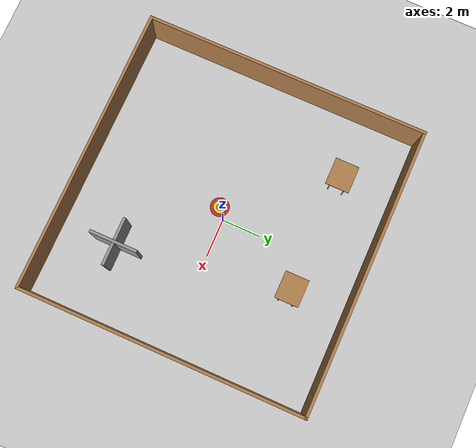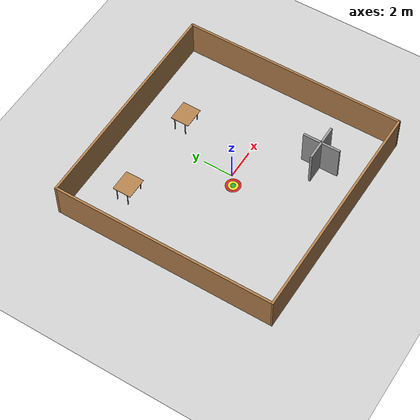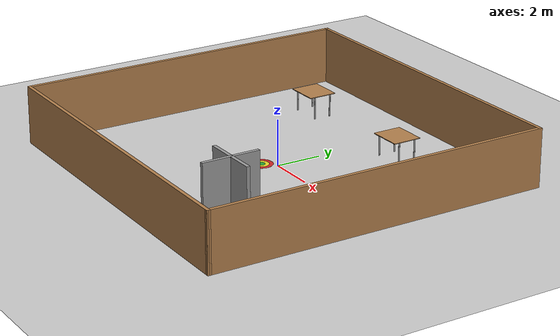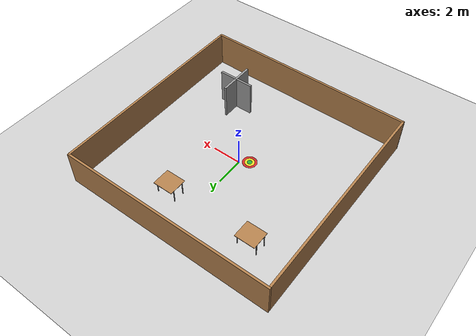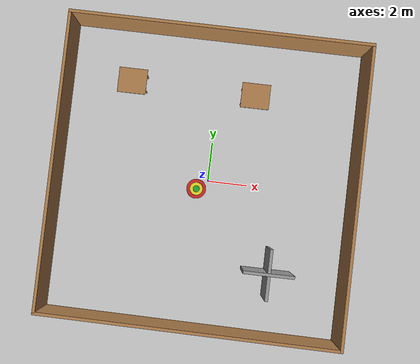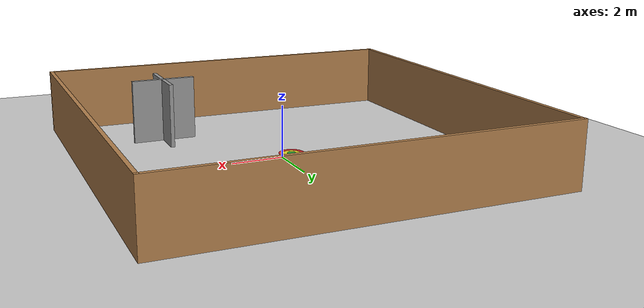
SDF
<sdf version="1.7">
 <world name="default">
  <light name="sun" type="directional">
   <pose>0 0 10 0 -0 0</pose>
   <diffuse>0.8 0.8 0.8 1</diffuse>
   <specular>0.2 0.2 0.2 1</specular>
   <attenuation>
    <range>1000</range>
    <constant>0.9</constant>
    <linear>0.01</linear>
    <quadratic>0.001</quadratic>
   </attenuation>
   <direction>-0.5 0.1 -0.9</direction>
   <spot><inner_angle>0</inner_angle><outer_angle>0</outer_angle><falloff>0</falloff></spot>
  </light>
  <model name="ground_plane">
   <static>1</static>
   <link name="link">
    <collision name="collision">
     <geometry><plane><normal>0 0 1</normal><size>100 100</size></plane></geometry>
     <surface><friction><ode><mu>100</mu><mu2>50</mu2></ode></friction></surface>
    </collision>
    <visual name="visual">
     <cast_shadows>0</cast_shadows>
     <geometry><plane><normal>0 0 1</normal><size>100 100</size></plane></geometry>
     <material>
      <script><uri>file://media/materials/scripts/gazebo.material</uri><name>Gazebo/Grey</name></script>
     </material>
    </visual>
   </link>
  </model>
  <gravity>0 0 -9.8</gravity>
  <magnetic_field>6e-06 2.3e-05 -4.2e-05</magnetic_field>
  <atmosphere type="adiabatic"/>
  <physics name="default_physics" default="0" type="ode">
   <max_step_size>0.001</max_step_size>
   <real_time_factor>1</real_time_factor>
   <real_time_update_rate>1000</real_time_update_rate>
  </physics>
  <scene><ambient>0.4 0.4 0.4 1</ambient><background>0.7 0.7 0.7 1</background><shadows>1</shadows></scene>
  <audio><device>default</device></audio>
  <spherical_coordinates>
   <surface_model>EARTH_WGS84</surface_model>
   <latitude_deg>0</latitude_deg>
   <longitude_deg>0</longitude_deg>
   <elevation>0</elevation>
   <heading_deg>0</heading_deg>
  </spherical_coordinates>
  <model name="mid">
   <pose>-0.167012 -0.01353 0 0 -0 0</pose>
   <link name="Wall_25">
    <collision name="Wall_25_Collision">
     <geometry><box><size>15 0.15 2.5</size></box></geometry>
     <pose>0 0 1.25 0 -0 0</pose>
    </collision>
    <visual name="Wall_25_Visual">
     <pose>0 0 1.25 0 -0 0</pose>
     <geometry><box><size>15 0.15 2.5</size></box></geometry>
     <material>
      <script><uri>file://media/materials/scripts/gazebo.material</uri><name>Gazebo/Wood</name></script>
      <ambient>1 1 1 1</ambient>
     </material>
     <meta><layer>0</layer></meta>
    </visual>
    <pose>-0 7.42538 0 0 -0 0</pose>
   </link>
   <link name="Wall_26">
    <collision name="Wall_26_Collision">
     <geometry><box><size>15 0.15 2.5</size></box></geometry>
     <pose>0 0 1.25 0 -0 0</pose>
    </collision>
    <visual name="Wall_26_Visual">
     <pose>0 0 1.25 0 -0 0</pose>
     <geometry><box><size>15 0.15 2.5</size></box></geometry>
     <material>
      <script><uri>file://media/materials/scripts/gazebo.material</uri><name>Gazebo/Wood</name></script>
      <ambient>1 1 1 1</ambient>
     </material>
     <meta><layer>0</layer></meta>
    </visual>
    <pose>7.425 0.000376 0 0 -0 -1.5708</pose>
   </link>
   <link name="Wall_27">
    <collision name="Wall_27_Collision">
     <geometry><box><size>15.0008 0.15 2.5</size></box></geometry>
     <pose>0 0 1.25 0 -0 0</pose>
    </collision>
    <visual name="Wall_27_Visual">
     <pose>0 0 1.25 0 -0 0</pose>
     <geometry><box><size>15.0008 0.15 2.5</size></box></geometry>
     <material>
      <script><uri>file://media/materials/scripts/gazebo.material</uri><name>Gazebo/Wood</name></script>
      <ambient>1 1 1 1</ambient>
     </material>
     <meta><layer>0</layer></meta>
    </visual>
    <pose>-0 -7.34962 0 0 -0 3.13149</pose>
   </link>
   <link name="Wall_29">
    <collision name="Wall_29_Collision">
     <geometry><box><size>14.75 0.15 2.5</size></box></geometry>
     <pose>0 0 1.25 0 -0 0</pose>
    </collision>
    <visual name="Wall_29_Visual">
     <pose>0 0 1.25 0 -0 0</pose>
     <geometry><box><size>14.75 0.15 2.5</size></box></geometry>
     <material>
      <script><uri>file://media/materials/scripts/gazebo.material</uri><name>Gazebo/Wood</name></script>
      <ambient>1 1 1 1</ambient>
     </material>
     <meta><layer>0</layer></meta>
    </visual>
    <pose>-7.425 0.125376 0 0 -0 -1.5708</pose>
   </link>
   <static>1</static>
  </model>
  <model name="Target_0">
   <link name="green">
    <visual name="visual">
     <geometry><cylinder><radius>0.167589</radius><length>0.0025</length></cylinder></geometry>
     <material>
      <script><uri>file://media/materials/scripts/gazebo.material</uri><name>Gazebo/Green</name></script>
      <ambient>1 1 1 1</ambient>
     </material>
     <cast_shadows>0</cast_shadows>
    </visual>
   </link>
   <link name="red">
    <visual name="visual">
     <geometry><cylinder><radius>0.502766</radius><length>0.0015</length></cylinder></geometry>
     <material>
      <script><uri>file://media/materials/scripts/gazebo.material</uri><name>Gazebo/Red</name></script>
      <ambient>1 1 1 1</ambient>
     </material>
     <cast_shadows>0</cast_shadows>
    </visual>
   </link>
   <link name="yellow">
    <visual name="visual">
     <geometry><cylinder><radius>0.335178</radius><length>0.002</length></cylinder></geometry>
     <material>
      <script><uri>file://media/materials/scripts/gazebo.material</uri><name>Gazebo/Yellow</name></script>
      <ambient>1 1 1 1</ambient>
     </material>
     <cast_shadows>0</cast_shadows>
    </visual>
   </link>
   <static>1</static>
   <pose>-0.567616 -0.434584 0 0 -0 0</pose>
  </model>
  <model name="ten_number">
   <pose>3.40046 -4.22265 0 0 -0 0</pose>
   <link name="Wall_26">
    <collision name="Wall_26_Collision">
     <geometry><box><size>2.5 0.15 2.5</size></box></geometry>
     <pose>0 0 1.25 0 -0 0</pose>
    </collision>
    <visual name="Wall_26_Visual">
     <pose>0 0 1.25 0 -0 0</pose>
     <geometry><box><size>2.5 0.15 2.5</size></box></geometry>
     <material>
      <script><uri>file://media/materials/scripts/gazebo.material</uri><name>Gazebo/Grey</name></script>
      <ambient>1 1 1 1</ambient>
     </material>
     <meta><layer>0</layer></meta>
    </visual>
    <pose>0 0.025001 0 0 -0 0</pose>
   </link>
   <link name="Wall_28">
    <collision name="Wall_28_Collision">
     <geometry><box><size>2.5 0.15 2.5</size></box></geometry>
     <pose>0 0 1.25 0 -0 0</pose>
    </collision>
    <visual name="Wall_28_Visual">
     <pose>0 0 1.25 0 -0 0</pose>
     <geometry><box><size>2.5 0.15 2.5</size></box></geometry>
     <material>
      <script><uri>file://media/materials/scripts/gazebo.material</uri><name>Gazebo/Grey</name></script>
      <ambient>1 1 1 1</ambient>
     </material>
     <meta><layer>0</layer></meta>
    </visual>
    <pose>0.005 0 0 0 -0 -1.5708</pose>
   </link>
   <static>1</static>
  </model>
  <model name="table">
   <link name="link">
    <inertial>
     <inertia><ixx>0</ixx><ixy>0</ixy><ixz>0</ixz><iyy>0</iyy><iyz>0</iyz><izz>0</izz></inertia>
     <mass>0</mass>
    </inertial>
    <visual name="front_left_leg">
     <pose>0.68 0.38 0.5 0 -0 0</pose>
     <geometry><cylinder><radius>0.031124</radius><length>1</length></cylinder></geometry>
     <material>
      <script><uri>file://media/materials/scripts/gazebo.material</uri><name>Gazebo/Grey</name></script>
     </material>
    </visual>
    <visual name="visual1">
     <pose>0 0 1 0 -0 0</pose>
     <geometry><box><size>1.43473 1.2599 0.03</size></box></geometry>
     <material>
      <script><uri>file://media/materials/scripts/gazebo.material</uri><name>Gazebo/Wood</name></script>
     </material>
    </visual>
    <visual name="front_right_leg">
     <pose>0.68 -0.38 0.5 0 -0 0</pose>
     <geometry><cylinder><radius>0.031124</radius><length>1</length></cylinder></geometry>
     <material>
      <script><uri>file://media/materials/scripts/gazebo.material</uri><name>Gazebo/Grey</name></script>
     </material>
    </visual>
    <visual name="back_right_leg">
     <pose>-0.68 -0.38 0.5 0 -0 0</pose>
     <geometry><cylinder><radius>0.031124</radius><length>1</length></cylinder></geometry>
     <material>
      <script><uri>file://media/materials/scripts/gazebo.material</uri><name>Gazebo/Grey</name></script>
     </material>
    </visual>
    <visual name="back_left_leg">
     <pose>-0.68 0.38 0.5 0 -0 0</pose>
     <geometry><cylinder><radius>0.031124</radius><length>1</length></cylinder></geometry>
     <material>
      <script><uri>file://media/materials/scripts/gazebo.material</uri><name>Gazebo/Grey</name></script>
     </material>
    </visual>
    <collision name="surface">
     <pose>0 0 1 0 -0 0</pose>
     <geometry><box><size>1.43473 1.2599 0.03</size></box></geometry>
     <surface>
      <friction>
       <ode><mu>0.6</mu><mu2>0.6</mu2><fdir1>0 0 0</fdir1><slip1>0</slip1><slip2>0</slip2></ode>
       <torsional>
        <coefficient>1</coefficient>
        <patch_radius>0</patch_radius>
        <surface_radius>0</surface_radius>
        <use_patch_radius>1</use_patch_radius>
        <ode><slip>0</slip></ode>
       </torsional>
      </friction>
      <bounce><restitution_coefficient>0</restitution_coefficient><threshold>1e+06</threshold></bounce>
      <contact>
       <collide_without_contact>0</collide_without_contact>
       <collide_without_contact_bitmask>1</collide_without_contact_bitmask>
       <collide_bitmask>1</collide_bitmask>
       <ode>
        <soft_cfm>0</soft_cfm>
        <soft_erp>0.2</soft_erp>
        <kp>1e+13</kp>
        <kd>1</kd>
        <max_vel>0.01</max_vel>
        <min_depth>0</min_depth>
       </ode>
       <bullet>
        <split_impulse>1</split_impulse>
        <split_impulse_penetration_threshold>-0.01</split_impulse_penetration_threshold>
        <soft_cfm>0</soft_cfm>
        <soft_erp>0.2</soft_erp>
        <kp>1e+13</kp>
        <kd>1</kd>
       </bullet>
      </contact>
     </surface>
    </collision>
    <collision name="front_left_leg">
     <pose>0.68 0.38 0.5 0 -0 0</pose>
     <geometry><cylinder><radius>0.031124</radius><length>1</length></cylinder></geometry>
     <surface>
      <friction>
       <ode><mu>1</mu><mu2>1</mu2><fdir1>0 0 0</fdir1><slip1>0</slip1><slip2>0</slip2></ode>
       <torsional>
        <coefficient>1</coefficient>
        <patch_radius>0</patch_radius>
        <surface_radius>0</surface_radius>
        <use_patch_radius>1</use_patch_radius>
        <ode><slip>0</slip></ode>
       </torsional>
      </friction>
      <bounce><restitution_coefficient>0</restitution_coefficient><threshold>1e+06</threshold></bounce>
      <contact>
       <collide_without_contact>0</collide_without_contact>
       <collide_without_contact_bitmask>1</collide_without_contact_bitmask>
       <collide_bitmask>1</collide_bitmask>
       <ode>
        <soft_cfm>0</soft_cfm>
        <soft_erp>0.2</soft_erp>
        <kp>1e+13</kp>
        <kd>1</kd>
        <max_vel>0.01</max_vel>
        <min_depth>0</min_depth>
       </ode>
       <bullet>
        <split_impulse>1</split_impulse>
        <split_impulse_penetration_threshold>-0.01</split_impulse_penetration_threshold>
        <soft_cfm>0</soft_cfm>
        <soft_erp>0.2</soft_erp>
        <kp>1e+13</kp>
        <kd>1</kd>
       </bullet>
      </contact>
     </surface>
    </collision>
    <collision name="front_right_leg">
     <pose>0.68 -0.38 0.5 0 -0 0</pose>
     <geometry><cylinder><radius>0.031124</radius><length>1</length></cylinder></geometry>
     <surface>
      <friction>
       <ode><mu>1</mu><mu2>1</mu2><fdir1>0 0 0</fdir1><slip1>0</slip1><slip2>0</slip2></ode>
       <torsional>
        <coefficient>1</coefficient>
        <patch_radius>0</patch_radius>
        <surface_radius>0</surface_radius>
        <use_patch_radius>1</use_patch_radius>
        <ode><slip>0</slip></ode>
       </torsional>
      </friction>
      <bounce><restitution_coefficient>0</restitution_coefficient><threshold>1e+06</threshold></bounce>
      <contact>
       <collide_without_contact>0</collide_without_contact>
       <collide_without_contact_bitmask>1</collide_without_contact_bitmask>
       <collide_bitmask>1</collide_bitmask>
       <ode>
        <soft_cfm>0</soft_cfm>
        <soft_erp>0.2</soft_erp>
        <kp>1e+13</kp>
        <kd>1</kd>
        <max_vel>0.01</max_vel>
        <min_depth>0</min_depth>
       </ode>
       <bullet>
        <split_impulse>1</split_impulse>
        <split_impulse_penetration_threshold>-0.01</split_impulse_penetration_threshold>
        <soft_cfm>0</soft_cfm>
        <soft_erp>0.2</soft_erp>
        <kp>1e+13</kp>
        <kd>1</kd>
       </bullet>
      </contact>
     </surface>
    </collision>
    <collision name="back_right_leg">
     <pose>-0.68 -0.38 0.5 0 -0 0</pose>
     <geometry><cylinder><radius>0.031124</radius><length>1</length></cylinder></geometry>
     <surface>
      <friction>
       <ode><mu>1</mu><mu2>1</mu2><fdir1>0 0 0</fdir1><slip1>0</slip1><slip2>0</slip2></ode>
       <torsional>
        <coefficient>1</coefficient>
        <patch_radius>0</patch_radius>
        <surface_radius>0</surface_radius>
        <use_patch_radius>1</use_patch_radius>
        <ode><slip>0</slip></ode>
       </torsional>
      </friction>
      <bounce><restitution_coefficient>0</restitution_coefficient><threshold>1e+06</threshold></bounce>
      <contact>
       <collide_without_contact>0</collide_without_contact>
       <collide_without_contact_bitmask>1</collide_without_contact_bitmask>
       <collide_bitmask>1</collide_bitmask>
       <ode>
        <soft_cfm>0</soft_cfm>
        <soft_erp>0.2</soft_erp>
        <kp>1e+13</kp>
        <kd>1</kd>
        <max_vel>0.01</max_vel>
        <min_depth>0</min_depth>
       </ode>
       <bullet>
        <split_impulse>1</split_impulse>
        <split_impulse_penetration_threshold>-0.01</split_impulse_penetration_threshold>
        <soft_cfm>0</soft_cfm>
        <soft_erp>0.2</soft_erp>
        <kp>1e+13</kp>
        <kd>1</kd>
       </bullet>
      </contact>
     </surface>
    </collision>
    <collision name="back_left_leg">
     <pose>-0.68 0.38 0.5 0 -0 0</pose>
     <geometry><cylinder><radius>0.031124</radius><length>1</length></cylinder></geometry>
     <surface>
      <friction>
       <ode><mu>1</mu><mu2>1</mu2><fdir1>0 0 0</fdir1><slip1>0</slip1><slip2>0</slip2></ode>
       <torsional>
        <coefficient>1</coefficient>
        <patch_radius>0</patch_radius>
        <surface_radius>0</surface_radius>
        <use_patch_radius>1</use_patch_radius>
        <ode><slip>0</slip></ode>
       </torsional>
      </friction>
      <bounce><restitution_coefficient>0</restitution_coefficient><threshold>1e+06</threshold></bounce>
      <contact>
       <collide_without_contact>0</collide_without_contact>
       <collide_without_contact_bitmask>1</collide_without_contact_bitmask>
       <collide_bitmask>1</collide_bitmask>
       <ode>
        <soft_cfm>0</soft_cfm>
        <soft_erp>0.2</soft_erp>
        <kp>1e+13</kp>
        <kd>1</kd>
        <max_vel>0.01</max_vel>
        <min_depth>0</min_depth>
       </ode>
       <bullet>
        <split_impulse>1</split_impulse>
        <split_impulse_penetration_threshold>-0.01</split_impulse_penetration_threshold>
        <soft_cfm>0</soft_cfm>
        <soft_erp>0.2</soft_erp>
        <kp>1e+13</kp>
        <kd>1</kd>
       </bullet>
      </contact>
     </surface>
    </collision>
   </link>
   <static>1</static>
   <pose>1.89135 4.52996 0 0 -0 0</pose>
  </model>
  <model name="table_0">
   <link name="link">
    <inertial>
     <inertia><ixx>0</ixx><ixy>0</ixy><ixz>0</ixz><iyy>0</iyy><iyz>0</iyz><izz>0</izz></inertia>
     <mass>0</mass>
    </inertial>
    <visual name="front_left_leg">
     <pose>0.68 0.38 0.5 0 -0 0</pose>
     <geometry><cylinder><radius>0.031124</radius><length>1</length></cylinder></geometry>
     <material>
      <script><uri>file://media/materials/scripts/gazebo.material</uri><name>Gazebo/Grey</name></script>
     </material>
    </visual>
    <visual name="visual1">
     <pose>0 0 1 0 -0 0</pose>
     <geometry><box><size>1.43473 1.2599 0.03</size></box></geometry>
     <material>
      <script><uri>file://media/materials/scripts/gazebo.material</uri><name>Gazebo/Wood</name></script>
     </material>
    </visual>
    <visual name="front_right_leg">
     <pose>0.68 -0.38 0.5 0 -0 0</pose>
     <geometry><cylinder><radius>0.031124</radius><length>1</length></cylinder></geometry>
     <material>
      <script><uri>file://media/materials/scripts/gazebo.material</uri><name>Gazebo/Grey</name></script>
     </material>
    </visual>
    <visual name="back_right_leg">
     <pose>-0.68 -0.38 0.5 0 -0 0</pose>
     <geometry><cylinder><radius>0.031124</radius><length>1</length></cylinder></geometry>
     <material>
      <script><uri>file://media/materials/scripts/gazebo.material</uri><name>Gazebo/Grey</name></script>
     </material>
    </visual>
    <visual name="back_left_leg">
     <pose>-0.68 0.38 0.5 0 -0 0</pose>
     <geometry><cylinder><radius>0.031124</radius><length>1</length></cylinder></geometry>
     <material>
      <script><uri>file://media/materials/scripts/gazebo.material</uri><name>Gazebo/Grey</name></script>
     </material>
    </visual>
    <collision name="surface">
     <pose>0 0 1 0 -0 0</pose>
     <geometry><box><size>1.43473 1.2599 0.03</size></box></geometry>
     <surface>
      <friction>
       <ode><mu>0.6</mu><mu2>0.6</mu2><fdir1>0 0 0</fdir1><slip1>0</slip1><slip2>0</slip2></ode>
       <torsional>
        <coefficient>1</coefficient>
        <patch_radius>0</patch_radius>
        <surface_radius>0</surface_radius>
        <use_patch_radius>1</use_patch_radius>
        <ode><slip>0</slip></ode>
       </torsional>
      </friction>
      <bounce><restitution_coefficient>0</restitution_coefficient><threshold>1e+06</threshold></bounce>
      <contact>
       <collide_without_contact>0</collide_without_contact>
       <collide_without_contact_bitmask>1</collide_without_contact_bitmask>
       <collide_bitmask>1</collide_bitmask>
       <ode>
        <soft_cfm>0</soft_cfm>
        <soft_erp>0.2</soft_erp>
        <kp>1e+13</kp>
        <kd>1</kd>
        <max_vel>0.01</max_vel>
        <min_depth>0</min_depth>
       </ode>
       <bullet>
        <split_impulse>1</split_impulse>
        <split_impulse_penetration_threshold>-0.01</split_impulse_penetration_threshold>
        <soft_cfm>0</soft_cfm>
        <soft_erp>0.2</soft_erp>
        <kp>1e+13</kp>
        <kd>1</kd>
       </bullet>
      </contact>
     </surface>
    </collision>
    <collision name="front_left_leg">
     <pose>0.68 0.38 0.5 0 -0 0</pose>
     <geometry><cylinder><radius>0.031124</radius><length>1</length></cylinder></geometry>
     <surface>
      <friction>
       <ode><mu>1</mu><mu2>1</mu2><fdir1>0 0 0</fdir1><slip1>0</slip1><slip2>0</slip2></ode>
       <torsional>
        <coefficient>1</coefficient>
        <patch_radius>0</patch_radius>
        <surface_radius>0</surface_radius>
        <use_patch_radius>1</use_patch_radius>
        <ode><slip>0</slip></ode>
       </torsional>
      </friction>
      <bounce><restitution_coefficient>0</restitution_coefficient><threshold>1e+06</threshold></bounce>
      <contact>
       <collide_without_contact>0</collide_without_contact>
       <collide_without_contact_bitmask>1</collide_without_contact_bitmask>
       <collide_bitmask>1</collide_bitmask>
       <ode>
        <soft_cfm>0</soft_cfm>
        <soft_erp>0.2</soft_erp>
        <kp>1e+13</kp>
        <kd>1</kd>
        <max_vel>0.01</max_vel>
        <min_depth>0</min_depth>
       </ode>
       <bullet>
        <split_impulse>1</split_impulse>
        <split_impulse_penetration_threshold>-0.01</split_impulse_penetration_threshold>
        <soft_cfm>0</soft_cfm>
        <soft_erp>0.2</soft_erp>
        <kp>1e+13</kp>
        <kd>1</kd>
       </bullet>
      </contact>
     </surface>
    </collision>
    <collision name="front_right_leg">
     <pose>0.68 -0.38 0.5 0 -0 0</pose>
     <geometry><cylinder><radius>0.031124</radius><length>1</length></cylinder></geometry>
     <surface>
      <friction>
       <ode><mu>1</mu><mu2>1</mu2><fdir1>0 0 0</fdir1><slip1>0</slip1><slip2>0</slip2></ode>
       <torsional>
        <coefficient>1</coefficient>
        <patch_radius>0</patch_radius>
        <surface_radius>0</surface_radius>
        <use_patch_radius>1</use_patch_radius>
        <ode><slip>0</slip></ode>
       </torsional>
      </friction>
      <bounce><restitution_coefficient>0</restitution_coefficient><threshold>1e+06</threshold></bounce>
      <contact>
       <collide_without_contact>0</collide_without_contact>
       <collide_without_contact_bitmask>1</collide_without_contact_bitmask>
       <collide_bitmask>1</collide_bitmask>
       <ode>
        <soft_cfm>0</soft_cfm>
        <soft_erp>0.2</soft_erp>
        <kp>1e+13</kp>
        <kd>1</kd>
        <max_vel>0.01</max_vel>
        <min_depth>0</min_depth>
       </ode>
       <bullet>
        <split_impulse>1</split_impulse>
        <split_impulse_penetration_threshold>-0.01</split_impulse_penetration_threshold>
        <soft_cfm>0</soft_cfm>
        <soft_erp>0.2</soft_erp>
        <kp>1e+13</kp>
        <kd>1</kd>
       </bullet>
      </contact>
     </surface>
    </collision>
    <collision name="back_right_leg">
     <pose>-0.68 -0.38 0.5 0 -0 0</pose>
     <geometry><cylinder><radius>0.031124</radius><length>1</length></cylinder></geometry>
     <surface>
      <friction>
       <ode><mu>1</mu><mu2>1</mu2><fdir1>0 0 0</fdir1><slip1>0</slip1><slip2>0</slip2></ode>
       <torsional>
        <coefficient>1</coefficient>
        <patch_radius>0</patch_radius>
        <surface_radius>0</surface_radius>
        <use_patch_radius>1</use_patch_radius>
        <ode><slip>0</slip></ode>
       </torsional>
      </friction>
      <bounce><restitution_coefficient>0</restitution_coefficient><threshold>1e+06</threshold></bounce>
      <contact>
       <collide_without_contact>0</collide_without_contact>
       <collide_without_contact_bitmask>1</collide_without_contact_bitmask>
       <collide_bitmask>1</collide_bitmask>
       <ode>
        <soft_cfm>0</soft_cfm>
        <soft_erp>0.2</soft_erp>
        <kp>1e+13</kp>
        <kd>1</kd>
        <max_vel>0.01</max_vel>
        <min_depth>0</min_depth>
       </ode>
       <bullet>
        <split_impulse>1</split_impulse>
        <split_impulse_penetration_threshold>-0.01</split_impulse_penetration_threshold>
        <soft_cfm>0</soft_cfm>
        <soft_erp>0.2</soft_erp>
        <kp>1e+13</kp>
        <kd>1</kd>
       </bullet>
      </contact>
     </surface>
    </collision>
    <collision name="back_left_leg">
     <pose>-0.68 0.38 0.5 0 -0 0</pose>
     <geometry><cylinder><radius>0.031124</radius><length>1</length></cylinder></geometry>
     <surface>
      <friction>
       <ode><mu>1</mu><mu2>1</mu2><fdir1>0 0 0</fdir1><slip1>0</slip1><slip2>0</slip2></ode>
       <torsional>
        <coefficient>1</coefficient>
        <patch_radius>0</patch_radius>
        <surface_radius>0</surface_radius>
        <use_patch_radius>1</use_patch_radius>
        <ode><slip>0</slip></ode>
       </torsional>
      </friction>
      <bounce><restitution_coefficient>0</restitution_coefficient><threshold>1e+06</threshold></bounce>
      <contact>
       <collide_without_contact>0</collide_without_contact>
       <collide_without_contact_bitmask>1</collide_without_contact_bitmask>
       <collide_bitmask>1</collide_bitmask>
       <ode>
        <soft_cfm>0</soft_cfm>
        <soft_erp>0.2</soft_erp>
        <kp>1e+13</kp>
        <kd>1</kd>
        <max_vel>0.01</max_vel>
        <min_depth>0</min_depth>
       </ode>
       <bullet>
        <split_impulse>1</split_impulse>
        <split_impulse_penetration_threshold>-0.01</split_impulse_penetration_threshold>
        <soft_cfm>0</soft_cfm>
        <soft_erp>0.2</soft_erp>
        <kp>1e+13</kp>
        <kd>1</kd>
       </bullet>
      </contact>
     </surface>
    </collision>
   </link>
   <static>1</static>
   <pose>-4.37178 4.60253 0 0 -0 0</pose>
  </model>
 </world>
</sdf>
